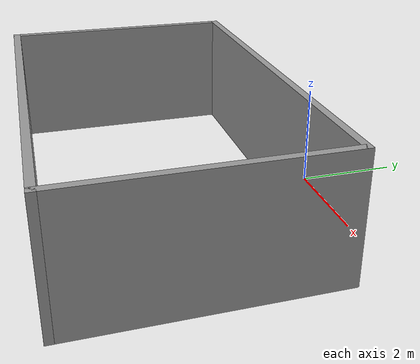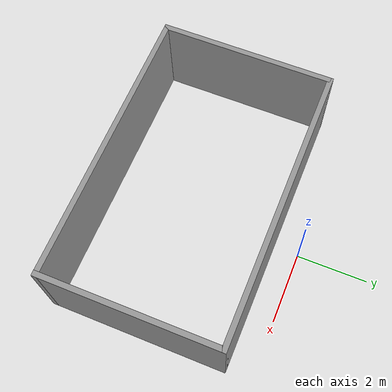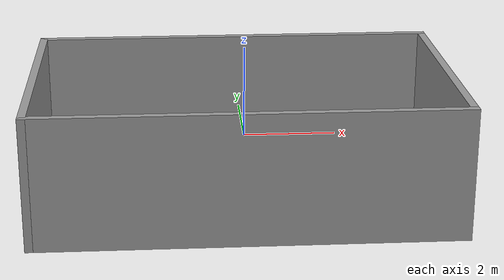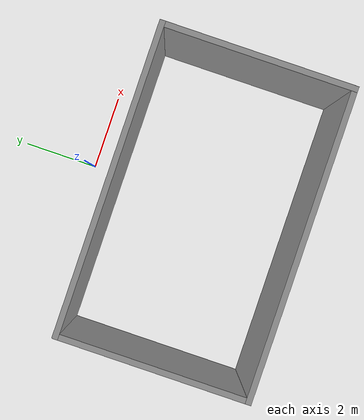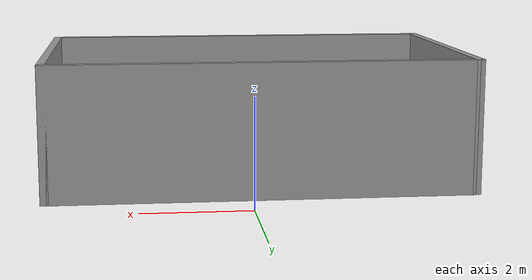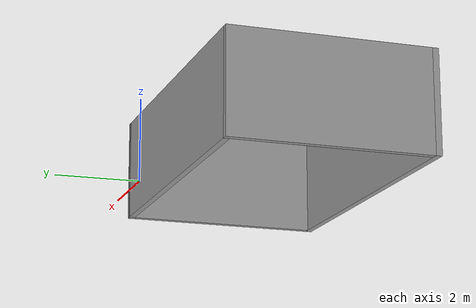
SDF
<?xml version='1.0'?>
<sdf version='1.7'>
  <model name='world1'>
    <pose>-0.265 -2.8525 0 0 -0 0</pose>
    <link name='Wall_0'>
      <collision name='Wall_0_Collision'>
        <geometry>
          <box>
            <size>8 0.15 2.5</size>
          </box>
        </geometry>
        <pose>0 0 1.25 0 -0 0</pose>
      </collision>
      <visual name='Wall_0_Visual'>
        <pose>0 0 1.25 0 -0 0</pose>
        <geometry>
          <box>
            <size>8 0.15 2.5</size>
          </box>
        </geometry>
        <material>
          <script>
            <uri>file://media/materials/scripts/gazebo.material</uri>
            <name>Gazebo/Grey</name>
          </script>
          <ambient>1 1 1 1</ambient>
        </material>
        <meta>
          <layer>0</layer>
        </meta>
      </visual>
      <pose>0 2.0725 0 0 -0 0</pose>
    </link>
    <link name='Wall_5'>
      <collision name='Wall_5_Collision'>
        <geometry>
          <box>
            <size>5 0.15 2.5</size>
          </box>
        </geometry>
        <pose>0 0 1.25 0 -0 0</pose>
      </collision>
      <visual name='Wall_5_Visual'>
        <pose>0 0 1.25 0 -0 0</pose>
        <geometry>
          <box>
            <size>5 0.15 2.5</size>
          </box>
        </geometry>
        <material>
          <script>
            <uri>file://media/materials/scripts/gazebo.material</uri>
            <name>Gazebo/Grey</name>
          </script>
          <ambient>1 1 1 1</ambient>
        </material>
        <meta>
          <layer>0</layer>
        </meta>
      </visual>
      <pose>3.925 -0.3525 0 0 -0 -1.5708</pose>
    </link>
    <link name='Wall_6'>
      <collision name='Wall_6_Collision'>
        <geometry>
          <box>
            <size>8 0.15 2.5</size>
          </box>
        </geometry>
        <pose>0 0 1.25 0 -0 0</pose>
      </collision>
      <visual name='Wall_6_Visual'>
        <pose>0 0 1.25 0 -0 0</pose>
        <geometry>
          <box>
            <size>8 0.15 2.5</size>
          </box>
        </geometry>
        <material>
          <script>
            <uri>file://media/materials/scripts/gazebo.material</uri>
            <name>Gazebo/Grey</name>
          </script>
          <ambient>1 1 1 1</ambient>
        </material>
        <meta>
          <layer>0</layer>
        </meta>
      </visual>
      <pose>0 -2.7775 0 0 -0 3.14159</pose>
    </link>
    <link name='Wall_7'>
      <collision name='Wall_7_Collision'>
        <geometry>
          <box>
            <size>5 0.15 2.5</size>
          </box>
        </geometry>
        <pose>0 0 1.25 0 -0 0</pose>
      </collision>
      <visual name='Wall_7_Visual'>
        <pose>0 0 1.25 0 -0 0</pose>
        <geometry>
          <box>
            <size>5 0.15 2.5</size>
          </box>
        </geometry>
        <material>
          <script>
            <uri>file://media/materials/scripts/gazebo.material</uri>
            <name>Gazebo/Grey</name>
          </script>
          <ambient>1 1 1 1</ambient>
        </material>
        <meta>
          <layer>0</layer>
        </meta>
      </visual>
      <pose>-3.925 -0.3525 0 0 -0 1.5708</pose>
    </link>
    <static>1</static>
  </model>
</sdf>
